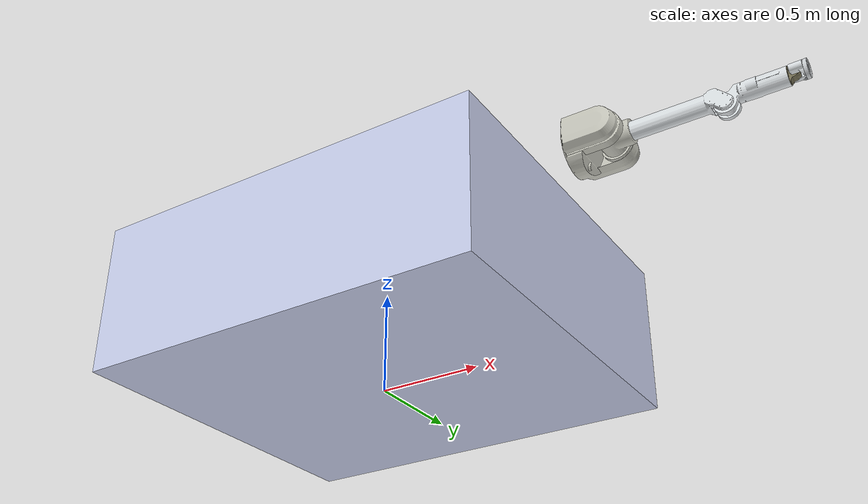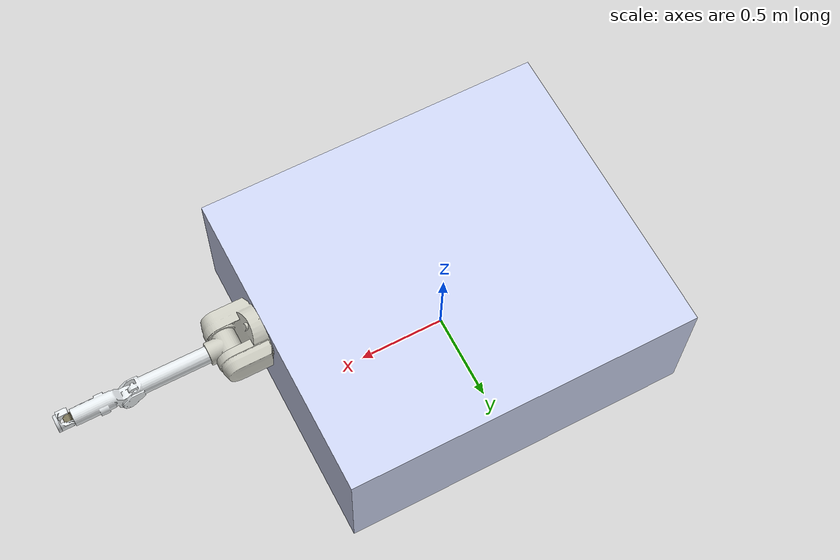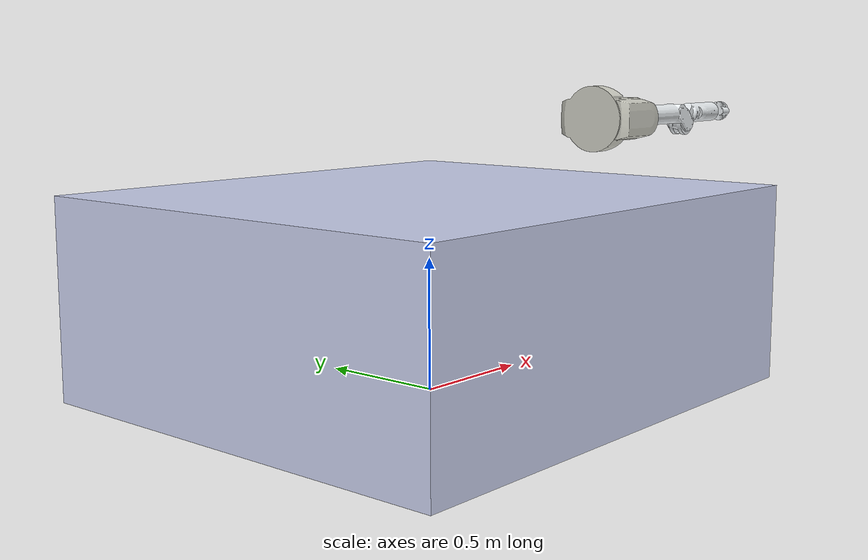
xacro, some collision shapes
<?xml version="1.0"?>

<!-- The Notices and Disclaimers for Ocean Worlds Autonomy Testbed for Exploration
     Research and Simulation can be found in README.md in the root directory of
     this repository. -->

<robot xmlns:xacro="http://ros.org/wiki/xacro" name="testbed">

    <link name="base_link">
        <inertial>
            <origin xyz="0.119878661403397 3.46555115975021E-06 0.48955232465652" rpy="0 0 0" />
            <mass value="131.806173772654" />
            <inertia ixx="28.0333265100969" ixy="0.000489960184546945" ixz="-6.49281649832701" iyy="41.1386181988454" iyz="0.000510432524822389" izz="41.5681888436952" />
        </inertial>
        <visual>
            <origin xyz="0 0 0" rpy="0 0 0" />
            <geometry>
                <mesh filename="package://ow_testbed/meshes/base_link.STL" />
            </geometry>
            <material name="">
                <color rgba="0.792156862745098 0.819607843137255 0.933333333333333 1" />
            </material>
        </visual>
        <collision>
          <origin xyz="0 0 0.37551" rpy="0 0 0" />
          <geometry>
            <box size="2 1.76312 0.75102" />
          </geometry>
        </collision>
    </link>
    <link name="l_shou">
        <inertial>
            <origin xyz="2.34506906116039E-08 -3.13157608178294E-08 0.104881710136302" rpy="0 0 0" />
            <mass value="17.3731548084309" />
            <inertia ixx="0.00984416556485027" ixy="-0.000889810187771659" ixz="1.11403026517765E-06" iyy="0.01" iyz="1.23247422151711E-05" izz="0.00992457984746285" />
        </inertial>
        <visual>
            <origin xyz="0 0 0" rpy="0 0 0" />
            <geometry>
                <mesh filename="package://ow_testbed/meshes/l_shou.STL" />
            </geometry>
            <material name="">
                <color rgba="0.796078431372549 0.796078431372549 0.752941176470588 1" />
            </material>
        </visual>
        <collision>
            <origin xyz="0 0 0" rpy="0 0 0" />
            <geometry>
                <mesh filename="package://ow_testbed/meshes/l_shou.STL" />
            </geometry>
        </collision>
    </link>
    <joint name="j_shou_yaw" type="continuous">
        <origin xyz="1.04634979302565 0 0.97102000726812" rpy="0 -1.5707963267949 3.14159265358979" />
        <parent link="base_link" />
        <child link="l_shou" />
        <axis xyz="0 0 -1" />
    </joint>
    <link name="l_shou_dist">
        <inertial>
            <origin xyz="0.0504694679981688 -2.92654023170691E-06 -1.00401414493412E-06" rpy="0 0 0" />
            <mass value="0.617321787344016" />
            <inertia ixx="0.00984416556485027" ixy="-0.000889810187771659" ixz="1.11403026517765E-06" iyy="0.01" iyz="1.23247422151711E-05" izz="0.00992457984746285" />
        </inertial>
        <visual>
            <origin xyz="0 0 0" rpy="0 0 0" />
            <geometry>
                <mesh filename="package://ow_testbed/meshes/l_shou_dist.STL" />
            </geometry>
            <material name="">
                <color rgba="0.796078431372549 0.796078431372549 0.752941176470588 1" />
            </material>
        </visual>
        <collision>
            <origin xyz="0 0 0" rpy="0 0 0" />
            <geometry>
                <mesh filename="package://ow_testbed/meshes/l_shou_dist.STL" />
            </geometry>
        </collision>
    </link>
    <joint name="j_shou_pitch" type="continuous">
        <origin xyz="0 0 0.186" rpy="1.5707963267949 -1.57079630572147 3.14159265358979" />
        <parent link="l_shou" />
        <child link="l_shou_dist" />
        <axis xyz="0 0 1" />
    </joint>
    <link name="l_prox">
        <inertial>
            <origin xyz="-0.0130869020509818 9.06166263248132E-06 0.448714680092974" rpy="0 0 0" />
            <mass value="1.38872642088632" />
            <inertia ixx="0.00984416556485027" ixy="-0.000889810187771659" ixz="1.11403026517765E-06" iyy="0.01" iyz="1.23247422151711E-05" izz="0.00992457984746285" />
        </inertial>
        <visual>
            <origin xyz="0 0 0" rpy="0 0 0" />
            <geometry>
                <mesh filename="package://ow_testbed/meshes/l_prox.STL" />
            </geometry>
            <material name="">
                <color rgba="0.898039215686275 0.917647058823529 0.929411764705882 1" />
            </material>
        </visual>
        <collision>
            <origin xyz="0 0 0" rpy="0 0 0" />
            <geometry>
                <mesh filename="package://ow_testbed/meshes/l_prox.STL" />
            </geometry>
        </collision>
    </link>
    <joint name="j_shou_roll" type="continuous">
        <origin xyz="0 0 0" rpy="1.5707963267949 -1.0097419586829E-28 1.57079632679499" />
        <parent link="l_shou_dist" />
        <child link="l_prox" />
        <axis xyz="0 0 -1" />
    </joint>
    <link name="l_dist">
        <inertial>
            <origin xyz="0.0430628041136141 0.150037474309121 -0.000129430533258534" rpy="0 0 0" />
            <mass value="4.17263230065155" />
            <inertia ixx="0.00984416556485027" ixy="-0.000889810187771659" ixz="1.11403026517765E-06" iyy="0.01" iyz="1.23247422151711E-05" izz="0.00992457984746285" />
        </inertial>
        <visual>
            <origin xyz="0 0 0" rpy="0 0 0" />
            <geometry>
                <mesh filename="package://ow_testbed/meshes/l_dist.STL" />
            </geometry>
            <material name="">
                <color rgba="0.898039215686275 0.917647058823529 0.929411764705882 1" />
            </material>
        </visual>
        <collision>
            <origin xyz="0 0 0" rpy="0 0 0" />
            <geometry>
                <mesh filename="package://ow_testbed/meshes/l_dist.STL" />
            </geometry>
        </collision>
    </link>
    <joint name="j_prox_pitch" type="continuous">
        <origin xyz="-0.0449999999999998 0 0.55" rpy="1.5707963267949 0 3.39021858132632E-16" />
        <parent link="l_prox" />
        <child link="l_dist" />
        <axis xyz="0 0 -1" />
    </joint>
    <link name="l_wrist">
        <inertial>
            <origin xyz="2.1143283124303E-08 2.98249802632711E-09 0.291061568909844" rpy="0 0 0" />
            <mass value="0.14900528332237" />
            <inertia ixx="0.00984416556485027" ixy="-0.000889810187771659" ixz="1.11403026517765E-06" iyy="0.01" iyz="1.23247422151711E-05" izz="0.00992457984746285" />
        </inertial>
        <visual>
            <origin xyz="0 0 0" rpy="0 0 0" />
            <geometry>
                <mesh filename="package://ow_testbed/meshes/l_wrist.STL" />
            </geometry>
            <material name="">
                <color rgba="0.47843137254902 0.454901960784314 0.345098039215686 1" />
            </material>
        </visual>
        <collision>
            <origin xyz="0 0 0" rpy="0 0 0" />
            <geometry>
                <mesh filename="package://ow_testbed/meshes/l_wrist.STL" />
            </geometry>
        </collision>
    </link>
    <joint name="j_dist_yaw" type="continuous">
        <origin xyz="0.0449999999999997 0 0" rpy="-1.5707963267949 -5.04870979341448E-29 -1.22835978651024E-16" />
        <parent link="l_dist" />
        <child link="l_wrist" />
        <axis xyz="0 0 -1" />
    </joint>
    <link name="l_hand">
        <inertial>
            <origin xyz="1.16874735445194E-08 0.0242368078735318 -0.0139665096874777" rpy="0 0 0" />
            <mass value="0.506690382292381" />
            <inertia ixx="0.00984416556485027" ixy="-0.000889810187771659" ixz="1.11403026517765E-06" iyy="0.01" iyz="1.23247422151711E-05" izz="0.00992457984746285" />
        </inertial>
        <visual>
            <origin xyz="0 0 0" rpy="0 0 0" />
            <geometry>
                <mesh filename="package://ow_testbed/meshes/l_hand.STL" />
            </geometry>
            <material name="">
                <color rgba="0.898039215686275 0.917647058823529 0.929411764705882 1" />
            </material>
        </visual>
        <collision>
            <origin xyz="0 0 0" rpy="0 0 0" />
            <geometry>
                <mesh filename="package://ow_testbed/meshes/l_hand.STL" />
            </geometry>
        </collision>
    </link>
    <joint name="j_dist_pitch" type="continuous">
        <origin xyz="0 0 0.29951" rpy="1.5708 -2.5244E-29 2.8253E-15" />
        <parent link="l_wrist" />
        <child link="l_hand" />
        <axis xyz="0 0 -1" />
    </joint>
    <link name="l_scoop">
        <inertial>
            <origin xyz="-2.22044604925031E-16 0.00625100000000078 0.0568373404475064" rpy="0 0 0" />
            <mass value="0.0991011928366119" />
            <inertia ixx="0.00984416556485027" ixy="-0.000889810187771659" ixz="1.11403026517765E-06" iyy="0.01" iyz="1.23247422151711E-05" izz="0.00992457984746285" />
        </inertial>
        <visual>
            <origin xyz="0 0 0" rpy="0 0 0" />
            <geometry>
                <mesh filename="package://ow_testbed/meshes/l_scoop.STL" />
            </geometry>
            <material name="">
                <color rgba="0.831372549019608 0.847058823529412 0.858823529411765 1" />
            </material>
        </visual>
        <collision>
            <origin xyz="0 0 0" rpy="0 0 0" />
            <geometry>
                <mesh filename="package://ow_testbed/meshes/l_scoop.STL" />
            </geometry>
        </collision>
    </link>
    <joint name="j_hand_yaw" type="continuous">
        <origin xyz="0 0 0" rpy="-1.5708 -6.6872E-15 -1.49E-16" />
        <parent link="l_hand" />
        <child link="l_scoop" />
        <axis xyz="0 0 -1" />
    </joint>
    <transmission name="shou_yaw_transmission">
        <type>transmission_interface/SimpleTransmission</type>
        <joint name="j_shou_yaw">
            <hardwareInterface>hardware_interface/EffortJointInterface</hardwareInterface>
        </joint>
        <actuator name="shou_yaw_motor">
            <hardwareInterface>hardware_interface/EffortJointInterface</hardwareInterface>
            <mechanicalReduction>1</mechanicalReduction>
        </actuator>
    </transmission>
    <transmission name="shou_pitch_transmission">
        <type>transmission_interface/SimpleTransmission</type>
        <joint name="j_shou_pitch">
            <hardwareInterface>hardware_interface/EffortJointInterface</hardwareInterface>
        </joint>
        <actuator name="shou_pitch_motor">
            <hardwareInterface>hardware_interface/EffortJointInterface</hardwareInterface>
            <mechanicalReduction>1</mechanicalReduction>
        </actuator>
    </transmission>
    <transmission name="shou_roll_transmission">
        <type>transmission_interface/SimpleTransmission</type>
        <joint name="j_shou_roll">
            <hardwareInterface>hardware_interface/EffortJointInterface</hardwareInterface>
        </joint>
        <actuator name="shou_roll_motor">
            <hardwareInterface>hardware_interface/EffortJointInterface</hardwareInterface>
            <mechanicalReduction>1</mechanicalReduction>
        </actuator>
    </transmission>
    <transmission name="prox_pitch_transmission">
        <type>transmission_interface/SimpleTransmission</type>
        <joint name="j_prox_pitch">
            <hardwareInterface>hardware_interface/EffortJointInterface</hardwareInterface>
        </joint>
        <actuator name="prox_pitch_motor">
            <hardwareInterface>hardware_interface/EffortJointInterface</hardwareInterface>
            <mechanicalReduction>1</mechanicalReduction>
        </actuator>
    </transmission>
    <transmission name="dist_yaw_transmission">
        <type>transmission_interface/SimpleTransmission</type>
        <joint name="j_dist_yaw">
            <hardwareInterface>hardware_interface/EffortJointInterface</hardwareInterface>
        </joint>
        <actuator name="dist_yaw_motor">
            <hardwareInterface>hardware_interface/EffortJointInterface</hardwareInterface>
            <mechanicalReduction>1</mechanicalReduction>
        </actuator>
    </transmission>
    <transmission name="dist_pitch_transmission">
        <type>transmission_interface/SimpleTransmission</type>
        <joint name="j_dist_pitch">
            <hardwareInterface>hardware_interface/EffortJointInterface</hardwareInterface>
        </joint>
        <actuator name="dist_pitch_motor">
            <hardwareInterface>hardware_interface/EffortJointInterface</hardwareInterface>
            <mechanicalReduction>1</mechanicalReduction>
        </actuator>
    </transmission>
    <transmission name="hand_yaw_transmission">
        <type>transmission_interface/SimpleTransmission</type>
        <joint name="j_hand_yaw">
            <hardwareInterface>hardware_interface/EffortJointInterface</hardwareInterface>
        </joint>
        <actuator name="hand_yaw_motor">
            <hardwareInterface>hardware_interface/EffortJointInterface</hardwareInterface>
            <mechanicalReduction>1</mechanicalReduction>
        </actuator>
    </transmission>
    <gazebo>
        <plugin name="gazebo_ros_control" filename="libgazebo_ros_control.so">
            <robotNamespace>/</robotNamespace>
        </plugin>
    </gazebo>
</robot>
